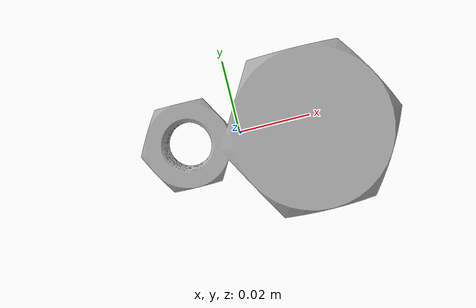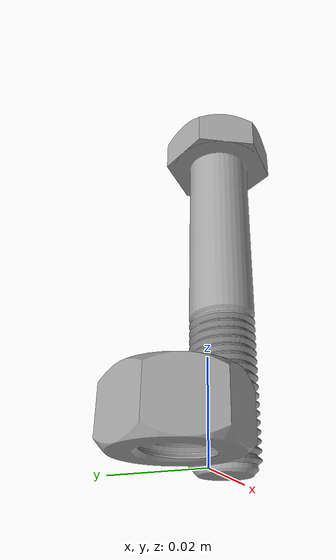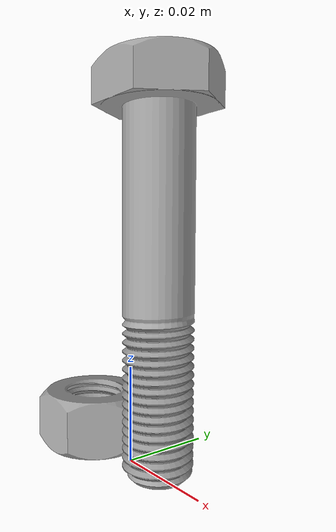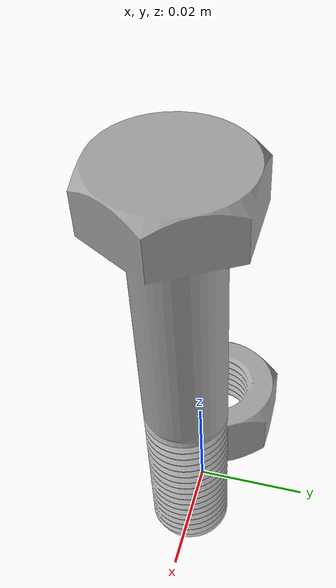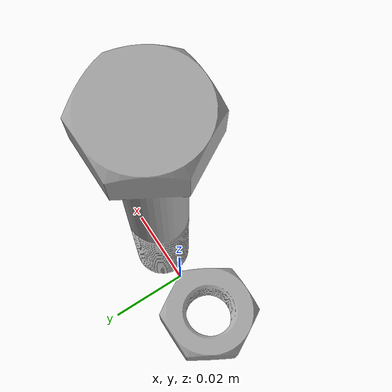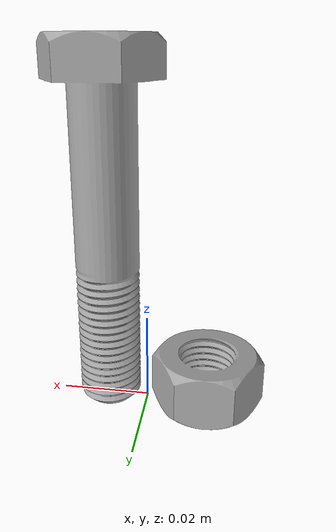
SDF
<?xml version="1.0" ?>
<sdf version="1.4">
  <model name="bolt5">
    <static>0</static>
    <link name="link">
      <visual name="visual">
        <geometry>
          <mesh>
            <uri>file:///home/sizhewin/push_grasp/src/my_ur5_description/models/meshes/bolt.dae</uri>
          </mesh>
        </geometry>
      </visual>
      <collision name="collision">
        <geometry>
          <mesh>
            <uri>file:///home/sizhewin/push_grasp/src/my_ur5_description/models/meshes/bolt.dae</uri>
          </mesh>
        </geometry>
      </collision>
    </link>
  </model>
</sdf>
